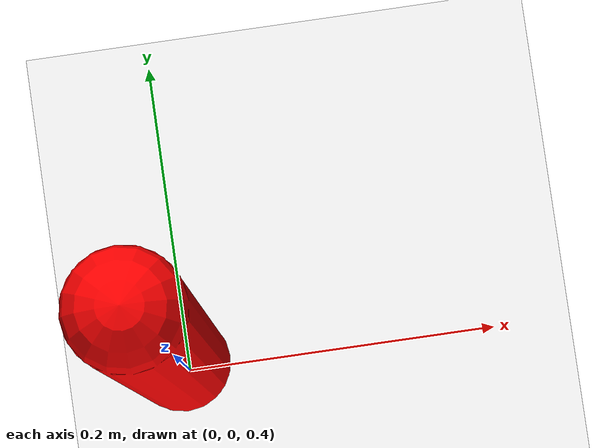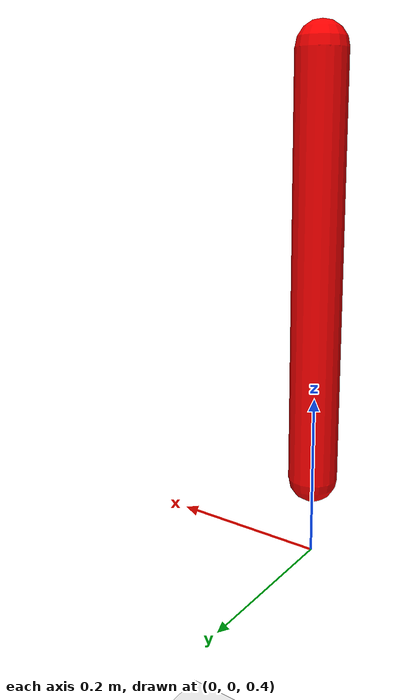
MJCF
<mujoco>

    <option gravity="0 0 -10" />

    <worldbody>

        <geom
            type="plane"
            size="5 5 0.1"
            rgba="247 247 229 1"
        />

        <body
            name="arm"
            pos="0 0 1">

            <joint
                name="hinge"
                type="hinge"
                axis="1 0 0"
            />

            <geom
                type="capsule"
                fromto="0 0 0 0 0 -0.5"
                size="0.03"
                rgba="1 0 0 1"
            />

        </body>

    </worldbody>

    <actuator>

        <motor
            joint="hinge"
            gear="10"
        />

    </actuator>

</mujoco>
